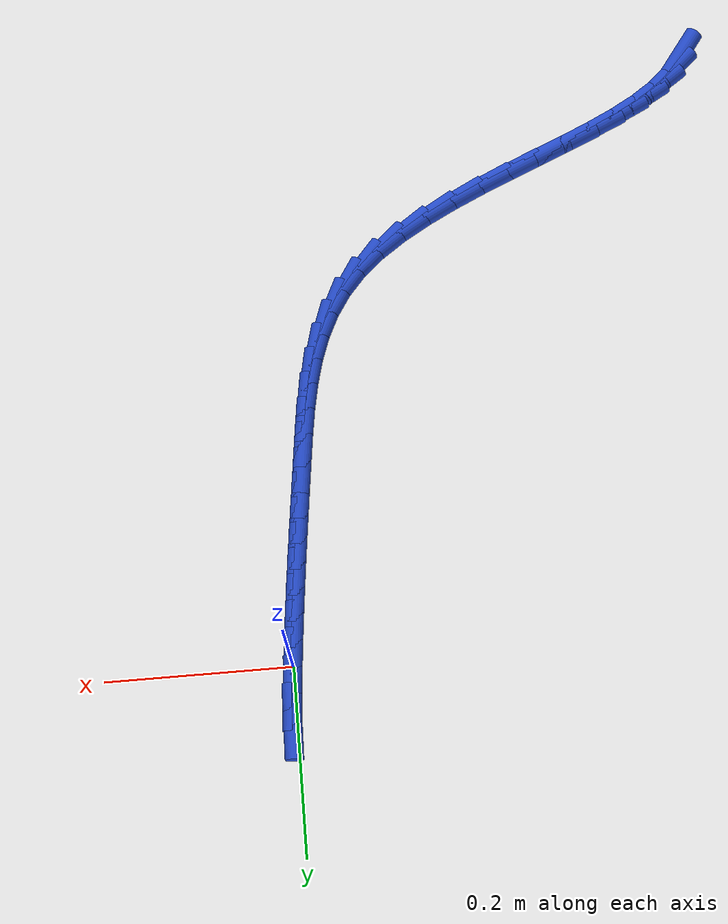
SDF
<sdf version="1.6">
 <world name="default">
  <model name="ground_plane">
   <static>1</static>
   <link name="link">
    <collision name="collision">
     <geometry><plane><normal>0 0 1</normal><size>100 100</size></plane></geometry>
     <surface><friction><ode><mu>100</mu><mu2>50</mu2></ode></friction></surface>
    </collision>
    <visual name="visual">
     <cast_shadows>0</cast_shadows>
     <geometry><plane><normal>0 0 1</normal><size>100 100</size></plane></geometry>
     <material>
      <script><uri>file://media/materials/scripts/gazebo.material</uri><name>Gazebo/WhiteGlow</name></script>
     </material>
    </visual>
   </link>
  </model>
  <model name="line">
   <link name="link_0">
    <pose>-9.974659986866641e-18 9.71445146547012e-17 0.01 0 1.57 1.487251406768959</pose>
    <collision name="collision">
     <geometry><cylinder><radius>0.01</radius><length>0.08</length></cylinder></geometry>
    </collision>
    <visual name="visual">
     <material>
      <script><name>Gazebo/Blue</name><uri>file://media/materials/scripts/gazebo.material</uri></script>
     </material>
     <geometry><cylinder><radius>0.01</radius><length>0.08</length></cylinder></geometry>
    </visual>
   </link>
   <link name="link_1">
    <pose>0.0024495682638747515 0.02925212546453676 0.01 0 1.57 1.5105407258994081</pose>
    <collision name="collision">
     <geometry><cylinder><radius>0.01</radius><length>0.08</length></cylinder></geometry>
    </collision>
    <visual name="visual">
     <material>
      <script><name>Gazebo/Blue</name><uri>file://media/materials/scripts/gazebo.material</uri></script>
     </material>
     <geometry><cylinder><radius>0.01</radius><length>0.08</length></cylinder></geometry>
    </visual>
   </link>
   <link name="link_2">
    <pose>0.004228482738991206 0.05873919394650529 0.01 0 1.57 1.5495581520209312</pose>
    <collision name="collision">
     <geometry><cylinder><radius>0.01</radius><length>0.08</length></cylinder></geometry>
    </collision>
    <visual name="visual">
     <material>
      <script><name>Gazebo/Blue</name><uri>file://media/materials/scripts/gazebo.material</uri></script>
     </material>
     <geometry><cylinder><radius>0.01</radius><length>0.08</length></cylinder></geometry>
    </visual>
   </link>
   <link name="link_250">
    <pose>-0.4890583500562934 -0.666113637779122 0.01 0 1.57 0.9382885925781171</pose>
    <collision name="collision">
     <geometry><cylinder><radius>0.01</radius><length>0.08</length></cylinder></geometry>
    </collision>
    <visual name="visual">
     <material>
      <script><name>Gazebo/Blue</name><uri>file://media/materials/scripts/gazebo.material</uri></script>
     </material>
     <geometry><cylinder><radius>0.01</radius><length>0.08</length></cylinder></geometry>
    </visual>
   </link>
   <link name="link_251">
    <pose>-0.4761449684191375 -0.6484955752172079 0.01 0 1.57 0.7406001415439037</pose>
    <collision name="collision">
     <geometry><cylinder><radius>0.01</radius><length>0.08</length></cylinder></geometry>
    </collision>
    <visual name="visual">
     <material>
      <script><name>Gazebo/Blue</name><uri>file://media/materials/scripts/gazebo.material</uri></script>
     </material>
     <geometry><cylinder><radius>0.01</radius><length>0.08</length></cylinder></geometry>
    </visual>
   </link>
   <link name="link_252">
    <pose>-0.4580857341972582 -0.6319859924010692 0.01 0 1.57 0.6074338350068412</pose>
    <collision name="collision">
     <geometry><cylinder><radius>0.01</radius><length>0.08</length></cylinder></geometry>
    </collision>
    <visual name="visual">
     <material>
      <script><name>Gazebo/Blue</name><uri>file://media/materials/scripts/gazebo.material</uri></script>
     </material>
     <geometry><cylinder><radius>0.01</radius><length>0.08</length></cylinder></geometry>
    </visual>
   </link>
   <link name="link_253">
    <pose>-0.4356018146094937 -0.6163572852676434 0.01 0 1.57 0.5194680435634035</pose>
    <collision name="collision">
     <geometry><cylinder><radius>0.01</radius><length>0.08</length></cylinder></geometry>
    </collision>
    <visual name="visual">
     <material>
      <script><name>Gazebo/Blue</name><uri>file://media/materials/scripts/gazebo.material</uri></script>
     </material>
     <geometry><cylinder><radius>0.01</radius><length>0.08</length></cylinder></geometry>
    </visual>
   </link>
   <link name="link_254">
    <pose>-0.40941437687468096 -0.6013818497538661 0.01 0 1.57 0.4626837818925767</pose>
    <collision name="collision">
     <geometry><cylinder><radius>0.01</radius><length>0.08</length></cylinder></geometry>
    </collision>
    <visual name="visual">
     <material>
      <script><name>Gazebo/Blue</name><uri>file://media/materials/scripts/gazebo.material</uri></script>
     </material>
     <geometry><cylinder><radius>0.01</radius><length>0.08</length></cylinder></geometry>
    </visual>
   </link>
   <link name="link_255">
    <pose>-0.3802445882116572 -0.5868320817966738 0.01 0 1.57 0.42833740421449396</pose>
    <collision name="collision">
     <geometry><cylinder><radius>0.01</radius><length>0.08</length></cylinder></geometry>
    </collision>
    <visual name="visual">
     <material>
      <script><name>Gazebo/Blue</name><uri>file://media/materials/scripts/gazebo.material</uri></script>
     </material>
     <geometry><cylinder><radius>0.01</radius><length>0.08</length></cylinder></geometry>
    </visual>
   </link>
   <link name="link_256">
    <pose>-0.3488136158392594 -0.5724803773330027 0.01 0 1.57 0.4113009284022113</pose>
    <collision name="collision">
     <geometry><cylinder><radius>0.01</radius><length>0.08</length></cylinder></geometry>
    </collision>
    <visual name="visual">
     <material>
      <script><name>Gazebo/Blue</name><uri>file://media/materials/scripts/gazebo.material</uri></script>
     </material>
     <geometry><cylinder><radius>0.01</radius><length>0.08</length></cylinder></geometry>
    </visual>
   </link>
   <link name="link_257">
    <pose>-0.3158426269763249 -0.558099132299789 0.01 0 1.57 0.40881131206209403</pose>
    <collision name="collision">
     <geometry><cylinder><radius>0.01</radius><length>0.08</length></cylinder></geometry>
    </collision>
    <visual name="visual">
     <material>
      <script><name>Gazebo/Blue</name><uri>file://media/materials/scripts/gazebo.material</uri></script>
     </material>
     <geometry><cylinder><radius>0.01</radius><length>0.08</length></cylinder></geometry>
    </visual>
   </link>
   <link name="link_258">
    <pose>-0.282052788841691 -0.5434607426339694 0.01 0 1.57 0.41975153684193706</pose>
    <collision name="collision">
     <geometry><cylinder><radius>0.01</radius><length>0.08</length></cylinder></geometry>
    </collision>
    <visual name="visual">
     <material>
      <script><name>Gazebo/Blue</name><uri>file://media/materials/scripts/gazebo.material</uri></script>
     </material>
     <geometry><cylinder><radius>0.01</radius><length>0.08</length></cylinder></geometry>
    </visual>
   </link>
   <link name="link_259">
    <pose>-0.24816526865419472 -0.52833760427248 0.01 0 1.57 0.44430830229305807</pose>
    <collision name="collision">
     <geometry><cylinder><radius>0.01</radius><length>0.08</length></cylinder></geometry>
    </collision>
    <visual name="visual">
     <material>
      <script><name>Gazebo/Blue</name><uri>file://media/materials/scripts/gazebo.material</uri></script>
     </material>
     <geometry><cylinder><radius>0.01</radius><length>0.08</length></cylinder></geometry>
    </visual>
   </link>
   <link name="link_260">
    <pose>-0.21490123363267336 -0.512502113152257 0.01 0 1.57 0.48388337738537257</pose>
    <collision name="collision">
     <geometry><cylinder><radius>0.01</radius><length>0.08</length></cylinder></geometry>
    </collision>
    <visual name="visual">
     <material>
      <script><name>Gazebo/Blue</name><uri>file://media/materials/scripts/gazebo.material</uri></script>
     </material>
     <geometry><cylinder><radius>0.01</radius><length>0.08</length></cylinder></geometry>
    </visual>
   </link>
   <link name="link_261">
    <pose>-0.18298185099596312 -0.4957266652102364 0.01 0 1.57 0.5411795071926736</pose>
    <collision name="collision">
     <geometry><cylinder><radius>0.01</radius><length>0.08</length></cylinder></geometry>
    </collision>
    <visual name="visual">
     <material>
      <script><name>Gazebo/Blue</name><uri>file://media/materials/scripts/gazebo.material</uri></script>
     </material>
     <geometry><cylinder><radius>0.01</radius><length>0.08</length></cylinder></geometry>
    </visual>
   </link>
   <link name="link_262">
    <pose>-0.15312828796290323 -0.47778365638335557 0.01 0 1.57 0.6203694738996774</pose>
    <collision name="collision">
     <geometry><cylinder><radius>0.01</radius><length>0.08</length></cylinder></geometry>
    </collision>
    <visual name="visual">
     <material>
      <script><name>Gazebo/Blue</name><uri>file://media/materials/scripts/gazebo.material</uri></script>
     </material>
     <geometry><cylinder><radius>0.01</radius><length>0.08</length></cylinder></geometry>
    </visual>
   </link>
   <link name="link_263">
    <pose>-0.12606171175232989 -0.4584454826085501 0.01 0 1.57 0.7271192997044167</pose>
    <collision name="collision">
     <geometry><cylinder><radius>0.01</radius><length>0.08</length></cylinder></geometry>
    </collision>
    <visual name="visual">
     <material>
      <script><name>Gazebo/Blue</name><uri>file://media/materials/scripts/gazebo.material</uri></script>
     </material>
     <geometry><cylinder><radius>0.01</radius><length>0.08</length></cylinder></geometry>
    </visual>
   </link>
   <link name="link_264">
    <pose>-0.10250328958308032 -0.43748453982275654 0.01 0 1.57 0.8636300145043514</pose>
    <collision name="collision">
     <geometry><cylinder><radius>0.01</radius><length>0.08</length></cylinder></geometry>
    </collision>
    <visual name="visual">
     <material>
      <script><name>Gazebo/Blue</name><uri>file://media/materials/scripts/gazebo.material</uri></script>
     </material>
     <geometry><cylinder><radius>0.01</radius><length>0.08</length></cylinder></geometry>
    </visual>
   </link>
   <link name="link_265">
    <pose>-0.08305079098010873 -0.41472278842152743 0.01 0 1.57 1.0033339561373804</pose>
    <collision name="collision">
     <geometry><cylinder><radius>0.01</radius><length>0.08</length></cylinder></geometry>
    </collision>
    <visual name="visual">
     <material>
      <script><name>Gazebo/Blue</name><uri>file://media/materials/scripts/gazebo.material</uri></script>
     </material>
     <geometry><cylinder><radius>0.01</radius><length>0.08</length></cylinder></geometry>
    </visual>
   </link>
   <link name="link_266">
    <pose>-0.06748933155338387 -0.39030860293402764 0.01 0 1.57 1.1284386170846057</pose>
    <collision name="collision">
     <geometry><cylinder><radius>0.01</radius><length>0.08</length></cylinder></geometry>
    </collision>
    <visual name="visual">
     <material>
      <script><name>Gazebo/Blue</name><uri>file://media/materials/scripts/gazebo.material</uri></script>
     </material>
     <geometry><cylinder><radius>0.01</radius><length>0.08</length></cylinder></geometry>
    </visual>
   </link>
   <link name="link_267">
    <pose>-0.05527532833805623 -0.3645223843997738 0.01 0 1.57 1.233991015202481</pose>
    <collision name="collision">
     <geometry><cylinder><radius>0.01</radius><length>0.08</length></cylinder></geometry>
    </collision>
    <visual name="visual">
     <material>
      <script><name>Gazebo/Blue</name><uri>file://media/materials/scripts/gazebo.material</uri></script>
     </material>
     <geometry><cylinder><radius>0.01</radius><length>0.08</length></cylinder></geometry>
    </visual>
   </link>
   <link name="link_268">
    <pose>-0.045864273537872584 -0.3376449053301178 0.01 0 1.57 1.317993781245904</pose>
    <collision name="collision">
     <geometry><cylinder><radius>0.01</radius><length>0.08</length></cylinder></geometry>
    </collision>
    <visual name="visual">
     <material>
      <script><name>Gazebo/Blue</name><uri>file://media/materials/scripts/gazebo.material</uri></script>
     </material>
     <geometry><cylinder><radius>0.01</radius><length>0.08</length></cylinder></geometry>
    </visual>
   </link>
   <link name="link_269">
    <pose>-0.03871165935657966 -0.3099569382364117 0.01 0 1.57 1.3803910040348006</pose>
    <collision name="collision">
     <geometry><cylinder><radius>0.01</radius><length>0.08</length></cylinder></geometry>
    </collision>
    <visual name="visual">
     <material>
      <script><name>Gazebo/Blue</name><uri>file://media/materials/scripts/gazebo.material</uri></script>
     </material>
     <geometry><cylinder><radius>0.01</radius><length>0.08</length></cylinder></geometry>
    </visual>
   </link>
   <link name="link_270">
    <pose>-0.03327297799792405 -0.2817392556300066 0.01 0 1.57 1.4219317170262975</pose>
    <collision name="collision">
     <geometry><cylinder><radius>0.01</radius><length>0.08</length></cylinder></geometry>
    </collision>
    <visual name="visual">
     <material>
      <script><name>Gazebo/Blue</name><uri>file://media/materials/scripts/gazebo.material</uri></script>
     </material>
     <geometry><cylinder><radius>0.01</radius><length>0.08</length></cylinder></geometry>
    </visual>
   </link>
   <link name="link_271">
    <pose>-0.029003721665652838 -0.2532726300222561 0.01 0 1.57 1.4433264743543588</pose>
    <collision name="collision">
     <geometry><cylinder><radius>0.01</radius><length>0.08</length></cylinder></geometry>
    </collision>
    <visual name="visual">
     <material>
      <script><name>Gazebo/Blue</name><uri>file://media/materials/scripts/gazebo.material</uri></script>
     </material>
     <geometry><cylinder><radius>0.01</radius><length>0.08</length></cylinder></geometry>
    </visual>
   </link>
   <link name="link_272">
    <pose>-0.025359382563512556 -0.22483783392451126 0.01 0 1.57 1.4475017647396138</pose>
    <collision name="collision">
     <geometry><cylinder><radius>0.01</radius><length>0.08</length></cylinder></geometry>
    </collision>
    <visual name="visual">
     <material>
      <script><name>Gazebo/Blue</name><uri>file://media/materials/scripts/gazebo.material</uri></script>
     </material>
     <geometry><cylinder><radius>0.01</radius><length>0.08</length></cylinder></geometry>
    </visual>
   </link>
   <link name="link_273">
    <pose>-0.021868170791638546 -0.19666543807275558 0.01 0 1.57 1.4483567477770984</pose>
    <collision name="collision">
     <geometry><cylinder><radius>0.01</radius><length>0.08</length></cylinder></geometry>
    </collision>
    <visual name="visual">
     <material>
      <script><name>Gazebo/Blue</name><uri>file://media/materials/scripts/gazebo.material</uri></script>
     </material>
     <geometry><cylinder><radius>0.01</radius><length>0.08</length></cylinder></geometry>
    </visual>
   </link>
   <link name="link_274">
    <pose>-0.01843045957776528 -0.16872908539482473 0.01 0 1.57 1.450372889051372</pose>
    <collision name="collision">
     <geometry><cylinder><radius>0.01</radius><length>0.08</length></cylinder></geometry>
    </collision>
    <visual name="visual">
     <material>
      <script><name>Gazebo/Blue</name><uri>file://media/materials/scripts/gazebo.material</uri></script>
     </material>
     <geometry><cylinder><radius>0.01</radius><length>0.08</length></cylinder></geometry>
    </visual>
   </link>
   <link name="link_275">
    <pose>-0.01506536488650321 -0.1409204431770778 0.01 0 1.57 1.4535462728704727</pose>
    <collision name="collision">
     <geometry><cylinder><radius>0.01</radius><length>0.08</length></cylinder></geometry>
    </collision>
    <visual name="visual">
     <material>
      <script><name>Gazebo/Blue</name><uri>file://media/materials/scripts/gazebo.material</uri></script>
     </material>
     <geometry><cylinder><radius>0.01</radius><length>0.08</length></cylinder></geometry>
    </visual>
   </link>
   <link name="link_276">
    <pose>-0.01179205416729917 -0.11313114316262618 0.01 0 1.57 1.4578448056365199</pose>
    <collision name="collision">
     <geometry><cylinder><radius>0.01</radius><length>0.08</length></cylinder></geometry>
    </collision>
    <visual name="visual">
     <material>
      <script><name>Gazebo/Blue</name><uri>file://media/materials/scripts/gazebo.material</uri></script>
     </material>
     <geometry><cylinder><radius>0.01</radius><length>0.08</length></cylinder></geometry>
    </visual>
   </link>
   <link name="link_277">
    <pose>-0.008629694869599993 -0.08525281709458117 0.01 0 1.57 1.4632111115144075</pose>
    <collision name="collision">
     <geometry><cylinder><radius>0.01</radius><length>0.08</length></cylinder></geometry>
    </collision>
    <visual name="visual">
     <material>
      <script><name>Gazebo/Blue</name><uri>file://media/materials/scripts/gazebo.material</uri></script>
     </material>
     <geometry><cylinder><radius>0.01</radius><length>0.08</length></cylinder></geometry>
    </visual>
   </link>
   <link name="link_278">
    <pose>-0.005597454442852527 -0.05717709671605434 0.01 0 1.57 1.469564851782965</pose>
    <collision name="collision">
     <geometry><cylinder><radius>0.01</radius><length>0.08</length></cylinder></geometry>
    </collision>
    <visual name="visual">
     <material>
      <script><name>Gazebo/Blue</name><uri>file://media/materials/scripts/gazebo.material</uri></script>
     </material>
     <geometry><cylinder><radius>0.01</radius><length>0.08</length></cylinder></geometry>
    </visual>
   </link>
   <link name="link_279">
    <pose>-0.0027145003365035207 -0.02879561377015616 0.01 0 1.57 1.4768062412009477</pose>
    <collision name="collision">
     <geometry><cylinder><radius>0.01</radius><length>0.08</length></cylinder></geometry>
    </collision>
    <visual name="visual">
     <material>
      <script><name>Gazebo/Blue</name><uri>file://media/materials/scripts/gazebo.material</uri></script>
     </material>
     <geometry><cylinder><radius>0.01</radius><length>0.08</length></cylinder></geometry>
    </visual>
   </link>
   <link name="link_280">
    <pose>4.336808689942018e-19 1.8041124150158794e-16 0.01 0 1.57 1.4848204675286394</pose>
    <collision name="collision">
     <geometry><cylinder><radius>0.01</radius><length>0.08</length></cylinder></geometry>
    </collision>
    <visual name="visual">
     <material>
      <script><name>Gazebo/Blue</name><uri>file://media/materials/scripts/gazebo.material</uri></script>
     </material>
     <geometry><cylinder><radius>0.01</radius><length>0.08</length></cylinder></geometry>
    </visual>
   </link>
   <link name="link_281">
    <pose>0.0025268791172112924 0.029318112851304142 0.01 0 1.57 1.4934826458709975</pose>
    <collision name="collision">
     <geometry><cylinder><radius>0.01</radius><length>0.08</length></cylinder></geometry>
    </collision>
    <visual name="visual">
     <material>
      <script><name>Gazebo/Blue</name><uri>file://media/materials/scripts/gazebo.material</uri></script>
     </material>
     <geometry><cylinder><radius>0.01</radius><length>0.08</length></cylinder></geometry>
    </visual>
   </link>
  </model>
 </world>
</sdf>
